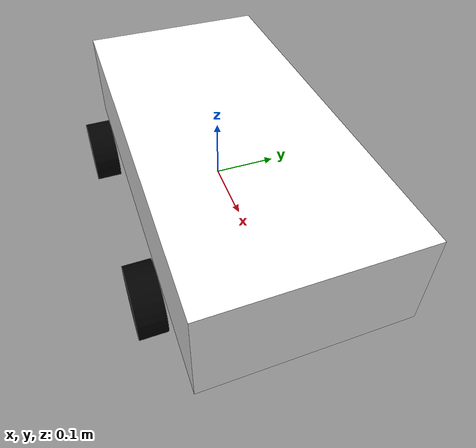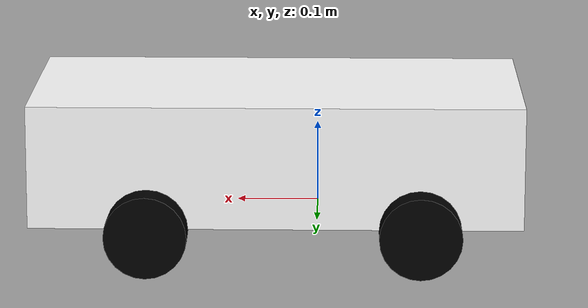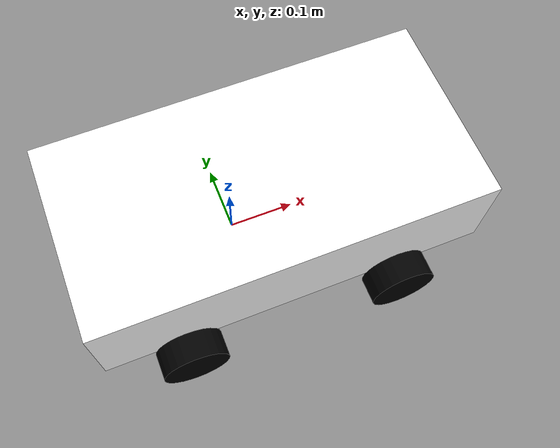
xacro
<?xml version="1.0"?>
<robot xmlns:xacro="http://www.ros.org/wiki/xacro" name="robot">
    <xacro:include filename="inertial_macros.xacro"/>

    <material name="white">
        <color rgba="1 1 1 1" />
    </material>
    <material name="orange">
        <color rgba="1 0.3 0.1 1" />
    </material>
    <material name="blue">
        <color rgba="0.2 0.2 1 1" />
    </material>
    <material name="black">
        <color rgba="0 0 0 1" />
    </material>

    <!-- BASE LINK -->
    <link name="base_link"></link>

    <!-- CHASSIS LINK -->
    <joint name="chassis_joint" type="fixed">
        <parent link="base_link"/>
        <child link="chassis"/>
        <origin xyz="-0.1 0 0"/>
    </joint>
    <link name="chassis">
        <visual>
            <origin xyz="0.15 0.0 0.075"/>
            <geometry>
                <box size="0.6 0.3 0.15"/>
            </geometry>
            <material name="white"/>
        </visual>
        <collision>
            <origin xyz="0.15 0.0 0.075"/>
            <geometry>
                <box size="0.6 0.3 0.15"/>
            </geometry>
        </collision>
        <xacro:inertial_box mass="0.5" x="0.3" y="0.3" z="0.15">
            <origin xyz="0.15 0 0.075" rpy="0 0 0"/>
        </xacro:inertial_box>
    </link>

    <gazebo reference="chassis">
        <material>Gazebo/White</material>
    </gazebo>

    <!-- LEFT WHEEL LINK -->
    <joint name="left_wheel_joint" type="continuous">
        <parent link="base_link"/>
        <child link="left_wheel"/>
        <origin xyz="-0.125 0.175 0" rpy="-${pi/2} 0 0"/>
        <axis xyz="0 0 1"/>
    </joint>
    <link name="left_wheel">
        <visual>
            <geometry>
                <cylinder radius="0.05" length="0.04"/>
            </geometry>
            <material name="black"/>
        </visual>
        <collision>
            <geometry>
                <cylinder radius="0.05" length="0.04"/>
            </geometry>
        </collision>
        <xacro:inertial_cylinder mass="0.1" length="0.04" radius="0.05">
            <origin xyz="0 0 0" rpy="0 0 0"/>
        </xacro:inertial_cylinder>
    </link>

     <gazebo reference="left_wheel">
        <material>Gazebo/Blue</material>
    </gazebo>

    <!-- RIGHT WHEEL LINK -->
    <joint name="right_wheel_joint" type="continuous">
        <parent link="base_link"/>
        <child link="right_wheel"/>
        <origin xyz="-0.125 -0.175 0" rpy="${pi/2} 0 0"/>
        <axis xyz="0 0 -1"/>
    </joint>
    <link name="right_wheel">
        <visual>
            <geometry>
                <cylinder radius="0.05" length="0.04"/>
            </geometry>
            <material name="black"/>
        </visual>
        <collision>
            <geometry>
                <cylinder radius="0.05" length="0.04"/>
            </geometry>
        </collision>
        <xacro:inertial_cylinder mass="0.1" length="0.04" radius="0.05">
            <origin xyz="0 0 0" rpy="0 0 0"/>
        </xacro:inertial_cylinder>
    </link>

     <gazebo reference="right_wheel">
        <material>Gazebo/Blue</material>
    </gazebo>

    <!-- LEFT FRONT WHEEL LINK -->
    <joint name="leftf_wheel_joint" type="continuous">
        <parent link="base_link"/>
        <child link="leftf_wheel"/>
        <origin xyz="0.205 0.175 0" rpy="-${pi/2} 0 0"/>
        <axis xyz="0 0 1"/>
    </joint>
    <link name="leftf_wheel">
        <visual>
            <geometry>
                <cylinder radius="0.05" length="0.04"/>
            </geometry>
            <material name="black"/>
        </visual>
        <collision>
            <geometry>
                <cylinder radius="0.05" length="0.04"/>
            </geometry>
        </collision>
        <xacro:inertial_cylinder mass="0.1" length="0.04" radius="0.05">
            <origin xyz="0 0 0" rpy="0 0 0"/>
        </xacro:inertial_cylinder>
    </link>

     <gazebo reference="leftf_wheel">
        <material>Gazebo/Blue</material>
    </gazebo>

    <!-- RIGHT FRONT WHEEL LINK -->
    <joint name="rightf_wheel_joint" type="continuous">
        <parent link="base_link"/>
        <child link="rightf_wheel"/>
        <origin xyz="0.205 -0.175 0" rpy="${pi/2} 0 0"/>
        <axis xyz="0 0 -1"/>
    </joint>
    <link name="rightf_wheel">
        <visual>
            <geometry>
                <cylinder radius="0.05" length="0.04"/>
            </geometry>
            <material name="black"/>
        </visual>
        <collision>
            <geometry>
                <cylinder radius="0.05" length="0.04"/>
            </geometry>
        </collision>
        <xacro:inertial_cylinder mass="0.1" length="0.04" radius="0.05">
            <origin xyz="0 0 0" rpy="0 0 0"/>
        </xacro:inertial_cylinder>
    </link>

     <gazebo reference="rightf_wheel">
        <material>Gazebo/Blue</material>
    </gazebo>

</robot>
